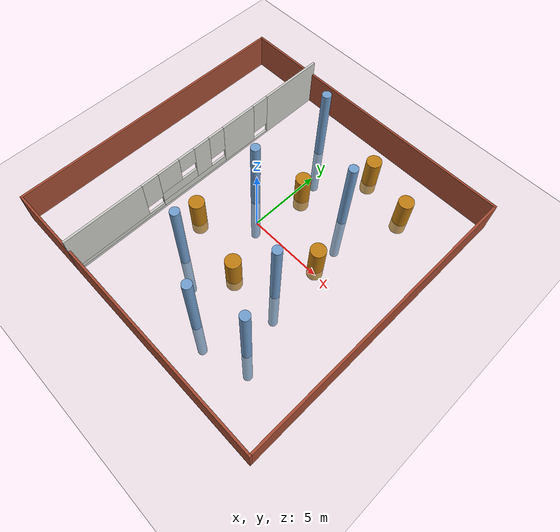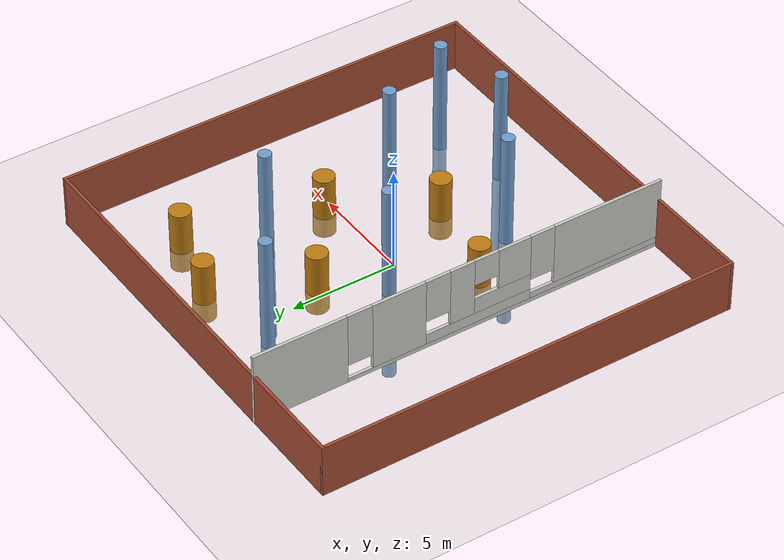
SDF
<sdf version="1.6">
 <world name="ego_swarm_4">
  <plugin name="gz::sim::systems::Physics" filename="gz-sim-physics-system"/>
  <plugin name="gz::sim::systems::UserCommands" filename="gz-sim-user-commands-system"/>
  <plugin name="gz::sim::systems::SceneBroadcaster" filename="gz-sim-scene-broadcaster-system"/>
  <plugin name="gz::sim::systems::Contact" filename="gz-sim-contact-system"/>
  <plugin name="gz::sim::systems::Imu" filename="gz-sim-imu-system"/>
  <plugin name="gz::sim::systems::AirPressure" filename="gz-sim-air-pressure-system"/>
  <plugin name="gz::sim::systems::ApplyLinkWrench" filename="gz-sim-apply-link-wrench-system"/>
  <plugin name="gz::sim::systems::NavSat" filename="gz-sim-navsat-system"/>
  <plugin name="gz::sim::systems::Sensors" filename="gz-sim-sensors-system">
   <render_engine>ogre2</render_engine>
  </plugin>
  <light name="sun" type="directional">
   <pose>0 0 10 0 -0 0</pose>
   <diffuse>0.8 0.8 0.8 1</diffuse>
   <specular>0.2 0.2 0.2 1</specular>
   <attenuation>
    <range>1000</range>
    <constant>0.9</constant>
    <linear>0.01</linear>
    <quadratic>0.001</quadratic>
   </attenuation>
   <direction>-0.5 0.1 -0.9</direction>
  </light>
  <model name="ground_plane">
   <static>1</static>
   <link name="link">
    <collision name="collision">
     <geometry><plane><normal>0 0 1</normal><size>100 100</size></plane></geometry>
     <surface><friction><ode><mu>100</mu><mu2>50</mu2></ode></friction></surface>
    </collision>
    <visual name="visual">
     <cast_shadows>0</cast_shadows>
     <geometry><plane><normal>0 0 1</normal><size>100 100</size></plane></geometry>
     <material>
      <script><uri>file://media/materials/scripts/gazebo.material</uri><name>Gazebo/Grey</name></script>
     </material>
    </visual>
   </link>
  </model>
  <gravity>0 0 -9.8</gravity>
  <magnetic_field>6e-06 2.3e-05 -4.2e-05</magnetic_field>
  <atmosphere type="adiabatic"/>
  <physics name="default_physics" default="0" type="ode">
   <max_step_size>0.004</max_step_size>
   <real_time_factor>1</real_time_factor>
   <real_time_update_rate>250</real_time_update_rate>
  </physics>
  <scene><ambient>0.4 0.4 0.4 1</ambient><background>0.7 0.7 0.7 1</background><shadows>1</shadows></scene>
  <spherical_coordinates>
   <surface_model>EARTH_WGS84</surface_model>
   <latitude_deg>0</latitude_deg>
   <longitude_deg>0</longitude_deg>
   <elevation>0</elevation>
   <heading_deg>0</heading_deg>
  </spherical_coordinates>
  <model name="22">
   <pose>-5 0 0 0 -0 0</pose>
   <link name="Wall_0">
    <pose>0 0 0 0 -0 -1.5708</pose>
    <visual name="Wall_0_Visual_0">
     <pose>-7.8375 0 1.75 0 -0 0</pose>
     <geometry><box><size>4.475 0.15 3.5</size></box></geometry>
     <material>
      <script><uri>file://media/materials/scripts/gazebo.material</uri><name>Gazebo/CeilingTiled</name></script>
      <ambient>0.760784 0.662745 0.627451 1</ambient>
     </material>
     <meta><layer>0</layer></meta>
    </visual>
    <collision name="Wall_0_Collision_0">
     <geometry><box><size>4.475 0.15 3.5</size></box></geometry>
     <pose>-7.8375 0 1.75 0 -0 0</pose>
    </collision>
    <visual name="Wall_0_Visual_1">
     <pose>2.2375 0 0.1 0 -0 0</pose>
     <geometry><box><size>15.675 0.15 0.2</size></box></geometry>
     <material>
      <script><uri>file://media/materials/scripts/gazebo.material</uri><name>Gazebo/CeilingTiled</name></script>
      <ambient>0.760784 0.662745 0.627451 1</ambient>
     </material>
     <meta><layer>0</layer></meta>
    </visual>
    <collision name="Wall_0_Collision_1">
     <geometry><box><size>15.675 0.15 0.2</size></box></geometry>
     <pose>2.2375 0 0.1 0 -0 0</pose>
    </collision>
    <visual name="Wall_0_Visual_2">
     <pose>-3.1 0 1.85 0 -0 0</pose>
     <geometry><box><size>2.6 0.15 3.3</size></box></geometry>
     <material>
      <script><uri>file://media/materials/scripts/gazebo.material</uri><name>Gazebo/CeilingTiled</name></script>
      <ambient>0.760784 0.662745 0.627451 1</ambient>
     </material>
     <meta><layer>0</layer></meta>
    </visual>
    <collision name="Wall_0_Collision_2">
     <geometry><box><size>2.6 0.15 3.3</size></box></geometry>
     <pose>-3.1 0 1.85 0 -0 0</pose>
    </collision>
    <visual name="Wall_0_Visual_3">
     <pose>0.8 0 0.45 0 -0 0</pose>
     <geometry><box><size>5.2 0.15 0.5</size></box></geometry>
     <material>
      <script><uri>file://media/materials/scripts/gazebo.material</uri><name>Gazebo/CeilingTiled</name></script>
      <ambient>0.760784 0.662745 0.627451 1</ambient>
     </material>
     <meta><layer>0</layer></meta>
    </visual>
    <collision name="Wall_0_Collision_3">
     <geometry><box><size>5.2 0.15 0.5</size></box></geometry>
     <pose>0.8 0 0.45 0 -0 0</pose>
    </collision>
    <visual name="Wall_0_Visual_4">
     <pose>6.7375 0 0.35 0 -0 0</pose>
     <geometry><box><size>6.675 0.15 0.3</size></box></geometry>
     <material>
      <script><uri>file://media/materials/scripts/gazebo.material</uri><name>Gazebo/CeilingTiled</name></script>
      <ambient>0.760784 0.662745 0.627451 1</ambient>
     </material>
     <meta><layer>0</layer></meta>
    </visual>
    <collision name="Wall_0_Collision_4">
     <geometry><box><size>6.675 0.15 0.3</size></box></geometry>
     <pose>6.7375 0 0.35 0 -0 0</pose>
    </collision>
    <visual name="Wall_0_Visual_5">
     <pose>7.3375 0 2 0 -0 0</pose>
     <geometry><box><size>5.475 0.15 3</size></box></geometry>
     <material>
      <script><uri>file://media/materials/scripts/gazebo.material</uri><name>Gazebo/CeilingTiled</name></script>
      <ambient>0.760784 0.662745 0.627451 1</ambient>
     </material>
     <meta><layer>0</layer></meta>
    </visual>
    <collision name="Wall_0_Collision_5">
     <geometry><box><size>5.475 0.15 3</size></box></geometry>
     <pose>7.3375 0 2 0 -0 0</pose>
    </collision>
    <visual name="Wall_0_Visual_6">
     <pose>0 0 2.1 0 -0 0</pose>
     <geometry><box><size>1.2 0.15 2.8</size></box></geometry>
     <material>
      <script><uri>file://media/materials/scripts/gazebo.material</uri><name>Gazebo/CeilingTiled</name></script>
      <ambient>0.760784 0.662745 0.627451 1</ambient>
     </material>
     <meta><layer>0</layer></meta>
    </visual>
    <collision name="Wall_0_Collision_6">
     <geometry><box><size>1.2 0.15 2.8</size></box></geometry>
     <pose>0 0 2.1 0 -0 0</pose>
    </collision>
    <visual name="Wall_0_Visual_7">
     <pose>2 0 1.1 0 -0 0</pose>
     <geometry><box><size>2.8 0.15 0.8</size></box></geometry>
     <material>
      <script><uri>file://media/materials/scripts/gazebo.material</uri><name>Gazebo/CeilingTiled</name></script>
      <ambient>0.760784 0.662745 0.627451 1</ambient>
     </material>
     <meta><layer>0</layer></meta>
    </visual>
    <collision name="Wall_0_Collision_7">
     <geometry><box><size>2.8 0.15 0.8</size></box></geometry>
     <pose>2 0 1.1 0 -0 0</pose>
    </collision>
    <visual name="Wall_0_Visual_8">
     <pose>-5 0 2.2 0 -0 0</pose>
     <geometry><box><size>1.2 0.15 2.6</size></box></geometry>
     <material>
      <script><uri>file://media/materials/scripts/gazebo.material</uri><name>Gazebo/CeilingTiled</name></script>
      <ambient>0.760784 0.662745 0.627451 1</ambient>
     </material>
     <meta><layer>0</layer></meta>
    </visual>
    <collision name="Wall_0_Collision_8">
     <geometry><box><size>1.2 0.15 2.6</size></box></geometry>
     <pose>-5 0 2.2 0 -0 0</pose>
    </collision>
    <visual name="Wall_0_Visual_9">
     <pose>4 0 2.35 0 -0 0</pose>
     <geometry><box><size>1.2 0.15 2.3</size></box></geometry>
     <material>
      <script><uri>file://media/materials/scripts/gazebo.material</uri><name>Gazebo/CeilingTiled</name></script>
      <ambient>0.760784 0.662745 0.627451 1</ambient>
     </material>
     <meta><layer>0</layer></meta>
    </visual>
    <collision name="Wall_0_Collision_9">
     <geometry><box><size>1.2 0.15 2.3</size></box></geometry>
     <pose>4 0 2.35 0 -0 0</pose>
    </collision>
    <visual name="Wall_0_Visual_10">
     <pose>-1.2 0 2.45 0 -0 0</pose>
     <geometry><box><size>1.2 0.15 2.1</size></box></geometry>
     <material>
      <script><uri>file://media/materials/scripts/gazebo.material</uri><name>Gazebo/CeilingTiled</name></script>
      <ambient>0.760784 0.662745 0.627451 1</ambient>
     </material>
     <meta><layer>0</layer></meta>
    </visual>
    <collision name="Wall_0_Collision_10">
     <geometry><box><size>1.2 0.15 2.1</size></box></geometry>
     <pose>-1.2 0 2.45 0 -0 0</pose>
    </collision>
    <visual name="Wall_0_Visual_11">
     <pose>2.6 0 2.5 0 -0 0</pose>
     <geometry><box><size>1.6 0.15 2</size></box></geometry>
     <material>
      <script><uri>file://media/materials/scripts/gazebo.material</uri><name>Gazebo/CeilingTiled</name></script>
      <ambient>0.760784 0.662745 0.627451 1</ambient>
     </material>
     <meta><layer>0</layer></meta>
    </visual>
    <collision name="Wall_0_Collision_11">
     <geometry><box><size>1.6 0.15 2</size></box></geometry>
     <pose>2.6 0 2.5 0 -0 0</pose>
    </collision>
    <visual name="Wall_0_Visual_12">
     <pose>1.2 0 2.85 0 -0 0</pose>
     <geometry><box><size>1.2 0.15 1.3</size></box></geometry>
     <material>
      <script><uri>file://media/materials/scripts/gazebo.material</uri><name>Gazebo/CeilingTiled</name></script>
      <ambient>0.760784 0.662745 0.627451 1</ambient>
     </material>
     <meta><layer>0</layer></meta>
    </visual>
    <collision name="Wall_0_Collision_12">
     <geometry><box><size>1.2 0.15 1.3</size></box></geometry>
     <pose>1.2 0 2.85 0 -0 0</pose>
    </collision>
   </link>
   <static>1</static>
  </model>
  <model name="blank">
   <link name="Wall_0">
    <collision name="Wall_0_Collision">
     <geometry><box><size>20.15 0.15 2.5</size></box></geometry>
     <pose>0 0 1.25 0 -0 0</pose>
    </collision>
    <visual name="Wall_0_Visual">
     <pose>0 0 1.25 0 -0 0</pose>
     <geometry><box><size>20.15 0.15 2.5</size></box></geometry>
     <material>
      <script><uri>file://media/materials/scripts/gazebo.material</uri><name>Gazebo/Bricks</name></script>
      <ambient>1 1 1 1</ambient>
     </material>
     <meta><layer>0</layer></meta>
    </visual>
    <pose>0 10 0 0 -0 0</pose>
   </link>
   <link name="Wall_1">
    <collision name="Wall_1_Collision">
     <geometry><box><size>20.15 0.15 2.5</size></box></geometry>
     <pose>0 0 1.25 0 -0 0</pose>
    </collision>
    <visual name="Wall_1_Visual">
     <pose>0 0 1.25 0 -0 0</pose>
     <geometry><box><size>20.15 0.15 2.5</size></box></geometry>
     <material>
      <script><uri>file://media/materials/scripts/gazebo.material</uri><name>Gazebo/Bricks</name></script>
      <ambient>1 1 1 1</ambient>
     </material>
     <meta><layer>0</layer></meta>
    </visual>
    <pose>10 0 0 0 -0 -1.5708</pose>
   </link>
   <link name="Wall_2">
    <collision name="Wall_2_Collision">
     <geometry><box><size>20.15 0.15 2.5</size></box></geometry>
     <pose>0 0 1.25 0 -0 0</pose>
    </collision>
    <visual name="Wall_2_Visual">
     <pose>0 0 1.25 0 -0 0</pose>
     <geometry><box><size>20.15 0.15 2.5</size></box></geometry>
     <material>
      <script><uri>file://media/materials/scripts/gazebo.material</uri><name>Gazebo/Bricks</name></script>
      <ambient>1 1 1 1</ambient>
     </material>
     <meta><layer>0</layer></meta>
    </visual>
    <pose>0 -10 0 0 -0 3.14159</pose>
   </link>
   <link name="Wall_3">
    <collision name="Wall_3_Collision">
     <geometry><box><size>20.15 0.15 2.5</size></box></geometry>
     <pose>0 0 1.25 0 -0 0</pose>
    </collision>
    <visual name="Wall_3_Visual">
     <pose>0 0 1.25 0 -0 0</pose>
     <geometry><box><size>20.15 0.15 2.5</size></box></geometry>
     <material>
      <script><uri>file://media/materials/scripts/gazebo.material</uri><name>Gazebo/Bricks</name></script>
      <ambient>1 1 1 1</ambient>
     </material>
     <meta><layer>0</layer></meta>
    </visual>
    <pose>-10 0 0 0 -0 1.5708</pose>
   </link>
   <static>1</static>
  </model>
  <model name="unit_cylinder">
   <link name="link">
    <inertial>
     <mass>1</mass>
     <inertia><ixx>0.145833</ixx><ixy>0</ixy><ixz>0</ixz><iyy>0.145833</iyy><iyz>0</iyz><izz>0.125</izz></inertia>
    </inertial>
    <visual name="visual">
     <geometry><cylinder><radius>0.5</radius><length>3</length></cylinder></geometry>
     <material>
      <script><name>Gazebo/Grey</name><uri>file://media/materials/scripts/gazebo.material</uri></script>
      <shader type="pixel"><normal_map>__default__</normal_map></shader>
      <ambient>0.757 0.49 0.067 1</ambient>
      <diffuse>0.7 0.7 0.7 1</diffuse>
      <specular>0.01 0.01 0.01 1</specular>
      <emissive>0 0 0 1</emissive>
     </material>
    </visual>
    <collision name="collision">
     <geometry><cylinder><radius>0.5</radius><length>1</length></cylinder></geometry>
     <surface>
      <friction>
       <ode><mu>1</mu><mu2>1</mu2><fdir1>0 0 0</fdir1><slip1>0</slip1><slip2>0</slip2></ode>
       <torsional>
        <coefficient>1</coefficient>
        <patch_radius>0</patch_radius>
        <surface_radius>0</surface_radius>
        <use_patch_radius>1</use_patch_radius>
        <ode><slip>0</slip></ode>
       </torsional>
      </friction>
      <bounce><restitution_coefficient>0</restitution_coefficient><threshold>1e+06</threshold></bounce>
      <contact>
       <collide_without_contact>0</collide_without_contact>
       <collide_without_contact_bitmask>1</collide_without_contact_bitmask>
       <collide_bitmask>1</collide_bitmask>
       <ode>
        <soft_cfm>0</soft_cfm>
        <soft_erp>0.2</soft_erp>
        <kp>1e+13</kp>
        <kd>1</kd>
        <max_vel>0.01</max_vel>
        <min_depth>0</min_depth>
       </ode>
       <bullet>
        <split_impulse>1</split_impulse>
        <split_impulse_penetration_threshold>-0.01</split_impulse_penetration_threshold>
        <soft_cfm>0</soft_cfm>
        <soft_erp>0.2</soft_erp>
        <kp>1e+13</kp>
        <kd>1</kd>
       </bullet>
      </contact>
     </surface>
    </collision>
   </link>
   <static>0</static>
   <pose>6.03209 6.76866 0.5 0 -0 0</pose>
  </model>
  <model name="unit_cylinder_0">
   <link name="link">
    <inertial>
     <mass>1</mass>
     <inertia><ixx>0.145833</ixx><ixy>0</ixy><ixz>0</ixz><iyy>0.145833</iyy><iyz>0</iyz><izz>0.125</izz></inertia>
    </inertial>
    <visual name="visual">
     <geometry><cylinder><radius>0.5</radius><length>3</length></cylinder></geometry>
     <material>
      <script><name>Gazebo/Grey</name><uri>file://media/materials/scripts/gazebo.material</uri></script>
      <shader type="pixel"><normal_map>__default__</normal_map></shader>
      <ambient>0.757 0.49 0.067 1</ambient>
      <diffuse>0.7 0.7 0.7 1</diffuse>
      <specular>0.01 0.01 0.01 1</specular>
      <emissive>0 0 0 1</emissive>
     </material>
    </visual>
    <collision name="collision">
     <geometry><cylinder><radius>0.5</radius><length>1</length></cylinder></geometry>
     <surface>
      <friction>
       <ode><mu>1</mu><mu2>1</mu2><fdir1>0 0 0</fdir1><slip1>0</slip1><slip2>0</slip2></ode>
       <torsional>
        <coefficient>1</coefficient>
        <patch_radius>0</patch_radius>
        <surface_radius>0</surface_radius>
        <use_patch_radius>1</use_patch_radius>
        <ode><slip>0</slip></ode>
       </torsional>
      </friction>
      <bounce><restitution_coefficient>0</restitution_coefficient><threshold>1e+06</threshold></bounce>
      <contact>
       <collide_without_contact>0</collide_without_contact>
       <collide_without_contact_bitmask>1</collide_without_contact_bitmask>
       <collide_bitmask>1</collide_bitmask>
       <ode>
        <soft_cfm>0</soft_cfm>
        <soft_erp>0.2</soft_erp>
        <kp>1e+13</kp>
        <kd>1</kd>
        <max_vel>0.01</max_vel>
        <min_depth>0</min_depth>
       </ode>
       <bullet>
        <split_impulse>1</split_impulse>
        <split_impulse_penetration_threshold>-0.01</split_impulse_penetration_threshold>
        <soft_cfm>0</soft_cfm>
        <soft_erp>0.2</soft_erp>
        <kp>1e+13</kp>
        <kd>1</kd>
       </bullet>
      </contact>
     </surface>
    </collision>
   </link>
   <static>0</static>
   <pose>0.526784 3.48874 0.499991 0 -0 0</pose>
  </model>
  <model name="unit_cylinder_1">
   <link name="link">
    <inertial>
     <mass>1</mass>
     <inertia><ixx>0.145833</ixx><ixy>0</ixy><ixz>0</ixz><iyy>0.145833</iyy><iyz>0</iyz><izz>0.125</izz></inertia>
    </inertial>
    <visual name="visual">
     <geometry><cylinder><radius>0.5</radius><length>3</length></cylinder></geometry>
     <material>
      <script><name>Gazebo/Grey</name><uri>file://media/materials/scripts/gazebo.material</uri></script>
      <shader type="pixel"><normal_map>__default__</normal_map></shader>
      <ambient>0.757 0.49 0.067 1</ambient>
      <diffuse>0.7 0.7 0.7 1</diffuse>
      <specular>0.01 0.01 0.01 1</specular>
      <emissive>0 0 0 1</emissive>
     </material>
    </visual>
    <collision name="collision">
     <geometry><cylinder><radius>0.5</radius><length>1</length></cylinder></geometry>
     <surface>
      <friction>
       <ode><mu>1</mu><mu2>1</mu2><fdir1>0 0 0</fdir1><slip1>0</slip1><slip2>0</slip2></ode>
       <torsional>
        <coefficient>1</coefficient>
        <patch_radius>0</patch_radius>
        <surface_radius>0</surface_radius>
        <use_patch_radius>1</use_patch_radius>
        <ode><slip>0</slip></ode>
       </torsional>
      </friction>
      <bounce><restitution_coefficient>0</restitution_coefficient><threshold>1e+06</threshold></bounce>
      <contact>
       <collide_without_contact>0</collide_without_contact>
       <collide_without_contact_bitmask>1</collide_without_contact_bitmask>
       <collide_bitmask>1</collide_bitmask>
       <ode>
        <soft_cfm>0</soft_cfm>
        <soft_erp>0.2</soft_erp>
        <kp>1e+13</kp>
        <kd>1</kd>
        <max_vel>0.01</max_vel>
        <min_depth>0</min_depth>
       </ode>
       <bullet>
        <split_impulse>1</split_impulse>
        <split_impulse_penetration_threshold>-0.01</split_impulse_penetration_threshold>
        <soft_cfm>0</soft_cfm>
        <soft_erp>0.2</soft_erp>
        <kp>1e+13</kp>
        <kd>1</kd>
       </bullet>
      </contact>
     </surface>
    </collision>
   </link>
   <static>0</static>
   <pose>2.69656 7.6939 0.5 0 -0 0</pose>
  </model>
  <model name="unit_cylinder_0_0">
   <link name="link">
    <inertial>
     <mass>1</mass>
     <inertia><ixx>0.145833</ixx><ixy>0</ixy><ixz>0</ixz><iyy>0.145833</iyy><iyz>0</iyz><izz>0.125</izz></inertia>
    </inertial>
    <pose>0 0 3 0 -0 0</pose>
    <visual name="visual">
     <geometry><cylinder><radius>0.3</radius><length>10</length></cylinder></geometry>
     <material>
      <script><name>Gazebo/Grey</name><uri>file://media/materials/scripts/gazebo.material</uri></script>
      <shader type="pixel"><normal_map>__default__</normal_map></shader>
      <ambient>0.447 0.624 0.812 1</ambient>
      <diffuse>0.7 0.7 0.7 1</diffuse>
      <specular>0.01 0.01 0.01 1</specular>
      <emissive>0 0 0 1</emissive>
     </material>
    </visual>
    <collision name="collision">
     <geometry><cylinder><radius>0.5</radius><length>1</length></cylinder></geometry>
     <surface>
      <friction>
       <ode><mu>1</mu><mu2>1</mu2><fdir1>0 0 0</fdir1><slip1>0</slip1><slip2>0</slip2></ode>
       <torsional>
        <coefficient>1</coefficient>
        <patch_radius>0</patch_radius>
        <surface_radius>0</surface_radius>
        <use_patch_radius>1</use_patch_radius>
        <ode><slip>0</slip></ode>
       </torsional>
      </friction>
      <bounce><restitution_coefficient>0</restitution_coefficient><threshold>1e+06</threshold></bounce>
      <contact>
       <collide_without_contact>0</collide_without_contact>
       <collide_without_contact_bitmask>1</collide_without_contact_bitmask>
       <collide_bitmask>1</collide_bitmask>
       <ode>
        <soft_cfm>0</soft_cfm>
        <soft_erp>0.2</soft_erp>
        <kp>1e+13</kp>
        <kd>1</kd>
        <max_vel>0.01</max_vel>
        <min_depth>0</min_depth>
       </ode>
       <bullet>
        <split_impulse>1</split_impulse>
        <split_impulse_penetration_threshold>-0.01</split_impulse_penetration_threshold>
        <soft_cfm>0</soft_cfm>
        <soft_erp>0.2</soft_erp>
        <kp>1e+13</kp>
        <kd>1</kd>
       </bullet>
      </contact>
     </surface>
    </collision>
   </link>
   <static>0</static>
   <pose>3.51742 4.05931 -2.50001 -0 -0 -0</pose>
  </model>
  <model name="unit_cylinder_0_1">
   <link name="link">
    <inertial>
     <mass>1</mass>
     <inertia><ixx>0.145833</ixx><ixy>0</ixy><ixz>0</ixz><iyy>0.145833</iyy><iyz>0</iyz><izz>0.125</izz></inertia>
    </inertial>
    <pose>0 0 3 0 -0 0</pose>
    <visual name="visual">
     <geometry><cylinder><radius>0.3</radius><length>10</length></cylinder></geometry>
     <material>
      <script><name>Gazebo/Grey</name><uri>file://media/materials/scripts/gazebo.material</uri></script>
      <shader type="pixel"><normal_map>__default__</normal_map></shader>
      <ambient>0.447 0.624 0.812 1</ambient>
      <diffuse>0.7 0.7 0.7 1</diffuse>
      <specular>0.01 0.01 0.01 1</specular>
      <emissive>0 0 0 1</emissive>
     </material>
    </visual>
    <collision name="collision">
     <geometry><cylinder><radius>0.5</radius><length>1</length></cylinder></geometry>
     <surface>
      <friction>
       <ode><mu>1</mu><mu2>1</mu2><fdir1>0 0 0</fdir1><slip1>0</slip1><slip2>0</slip2></ode>
       <torsional>
        <coefficient>1</coefficient>
        <patch_radius>0</patch_radius>
        <surface_radius>0</surface_radius>
        <use_patch_radius>1</use_patch_radius>
        <ode><slip>0</slip></ode>
       </torsional>
      </friction>
      <bounce><restitution_coefficient>0</restitution_coefficient><threshold>1e+06</threshold></bounce>
      <contact>
       <collide_without_contact>0</collide_without_contact>
       <collide_without_contact_bitmask>1</collide_without_contact_bitmask>
       <collide_bitmask>1</collide_bitmask>
       <ode>
        <soft_cfm>0</soft_cfm>
        <soft_erp>0.2</soft_erp>
        <kp>1e+13</kp>
        <kd>1</kd>
        <max_vel>0.01</max_vel>
        <min_depth>0</min_depth>
       </ode>
       <bullet>
        <split_impulse>1</split_impulse>
        <split_impulse_penetration_threshold>-0.01</split_impulse_penetration_threshold>
        <soft_cfm>0</soft_cfm>
        <soft_erp>0.2</soft_erp>
        <kp>1e+13</kp>
        <kd>1</kd>
       </bullet>
      </contact>
     </surface>
    </collision>
   </link>
   <static>0</static>
   <pose>2.4991 -7.17041 -2.5 0 -0 0</pose>
  </model>
  <model name="unit_cylinder_0_2">
   <link name="link">
    <inertial>
     <mass>1</mass>
     <inertia><ixx>0.145833</ixx><ixy>0</ixy><ixz>0</ixz><iyy>0.145833</iyy><iyz>0</iyz><izz>0.125</izz></inertia>
    </inertial>
    <pose>0 0 3 0 -0 0</pose>
    <visual name="visual">
     <geometry><cylinder><radius>0.3</radius><length>10</length></cylinder></geometry>
     <material>
      <script><name>Gazebo/Grey</name><uri>file://media/materials/scripts/gazebo.material</uri></script>
      <shader type="pixel"><normal_map>__default__</normal_map></shader>
      <ambient>0.447 0.624 0.812 1</ambient>
      <diffuse>0.7 0.7 0.7 1</diffuse>
      <specular>0.01 0.01 0.01 1</specular>
      <emissive>0 0 0 1</emissive>
     </material>
    </visual>
    <collision name="collision">
     <geometry><cylinder><radius>0.5</radius><length>1</length></cylinder></geometry>
     <surface>
      <friction>
       <ode><mu>1</mu><mu2>1</mu2><fdir1>0 0 0</fdir1><slip1>0</slip1><slip2>0</slip2></ode>
       <torsional>
        <coefficient>1</coefficient>
        <patch_radius>0</patch_radius>
        <surface_radius>0</surface_radius>
        <use_patch_radius>1</use_patch_radius>
        <ode><slip>0</slip></ode>
       </torsional>
      </friction>
      <bounce><restitution_coefficient>0</restitution_coefficient><threshold>1e+06</threshold></bounce>
      <contact>
       <collide_without_contact>0</collide_without_contact>
       <collide_without_contact_bitmask>1</collide_without_contact_bitmask>
       <collide_bitmask>1</collide_bitmask>
       <ode>
        <soft_cfm>0</soft_cfm>
        <soft_erp>0.2</soft_erp>
        <kp>1e+13</kp>
        <kd>1</kd>
        <max_vel>0.01</max_vel>
        <min_depth>0</min_depth>
       </ode>
       <bullet>
        <split_impulse>1</split_impulse>
        <split_impulse_penetration_threshold>-0.01</split_impulse_penetration_threshold>
        <soft_cfm>0</soft_cfm>
        <soft_erp>0.2</soft_erp>
        <kp>1e+13</kp>
        <kd>1</kd>
       </bullet>
      </contact>
     </surface>
    </collision>
   </link>
   <static>0</static>
   <pose>5.67976 -6.20918 -2.50001 -0 -0 -0</pose>
  </model>
  <model name="unit_cylinder_0_3">
   <link name="link">
    <inertial>
     <mass>1</mass>
     <inertia><ixx>0.145833</ixx><ixy>0</ixy><ixz>0</ixz><iyy>0.145833</iyy><iyz>0</iyz><izz>0.125</izz></inertia>
    </inertial>
    <pose>0 0 3 0 -0 0</pose>
    <visual name="visual">
     <geometry><cylinder><radius>0.3</radius><length>10</length></cylinder></geometry>
     <material>
      <script><name>Gazebo/Grey</name><uri>file://media/materials/scripts/gazebo.material</uri></script>
      <shader type="pixel"><normal_map>__default__</normal_map></shader>
      <ambient>0.447 0.624 0.812 1</ambient>
      <diffuse>0.7 0.7 0.7 1</diffuse>
      <specular>0.01 0.01 0.01 1</specular>
      <emissive>0 0 0 1</emissive>
     </material>
    </visual>
    <collision name="collision">
     <geometry><cylinder><radius>0.5</radius><length>1</length></cylinder></geometry>
     <surface>
      <friction>
       <ode><mu>1</mu><mu2>1</mu2><fdir1>0 0 0</fdir1><slip1>0</slip1><slip2>0</slip2></ode>
       <torsional>
        <coefficient>1</coefficient>
        <patch_radius>0</patch_radius>
        <surface_radius>0</surface_radius>
        <use_patch_radius>1</use_patch_radius>
        <ode><slip>0</slip></ode>
       </torsional>
      </friction>
      <bounce><restitution_coefficient>0</restitution_coefficient><threshold>1e+06</threshold></bounce>
      <contact>
       <collide_without_contact>0</collide_without_contact>
       <collide_without_contact_bitmask>1</collide_without_contact_bitmask>
       <collide_bitmask>1</collide_bitmask>
       <ode>
        <soft_cfm>0</soft_cfm>
        <soft_erp>0.2</soft_erp>
        <kp>1e+13</kp>
        <kd>1</kd>
        <max_vel>0.01</max_vel>
        <min_depth>0</min_depth>
       </ode>
       <bullet>
        <split_impulse>1</split_impulse>
        <split_impulse_penetration_threshold>-0.01</split_impulse_penetration_threshold>
        <soft_cfm>0</soft_cfm>
        <soft_erp>0.2</soft_erp>
        <kp>1e+13</kp>
        <kd>1</kd>
       </bullet>
      </contact>
     </surface>
    </collision>
   </link>
   <static>0</static>
   <pose>4.22335 -2.59857 -2.5 0 -0 0</pose>
  </model>
  <model name="unit_cylinder_0_4">
   <link name="link">
    <inertial>
     <mass>1</mass>
     <inertia><ixx>0.145833</ixx><ixy>0</ixy><ixz>0</ixz><iyy>0.145833</iyy><iyz>0</iyz><izz>0.125</izz></inertia>
    </inertial>
    <pose>0 0 3 0 -0 0</pose>
    <visual name="visual">
     <geometry><cylinder><radius>0.3</radius><length>10</length></cylinder></geometry>
     <material>
      <script><name>Gazebo/Grey</name><uri>file://media/materials/scripts/gazebo.material</uri></script>
      <shader type="pixel"><normal_map>__default__</normal_map></shader>
      <ambient>0.447 0.624 0.812 1</ambient>
      <diffuse>0.7 0.7 0.7 1</diffuse>
      <specular>0.01 0.01 0.01 1</specular>
      <emissive>0 0 0 1</emissive>
     </material>
    </visual>
    <collision name="collision">
     <geometry><cylinder><radius>0.5</radius><length>1</length></cylinder></geometry>
     <surface>
      <friction>
       <ode><mu>1</mu><mu2>1</mu2><fdir1>0 0 0</fdir1><slip1>0</slip1><slip2>0</slip2></ode>
       <torsional>
        <coefficient>1</coefficient>
        <patch_radius>0</patch_radius>
        <surface_radius>0</surface_radius>
        <use_patch_radius>1</use_patch_radius>
        <ode><slip>0</slip></ode>
       </torsional>
      </friction>
      <bounce><restitution_coefficient>0</restitution_coefficient><threshold>1e+06</threshold></bounce>
      <contact>
       <collide_without_contact>0</collide_without_contact>
       <collide_without_contact_bitmask>1</collide_without_contact_bitmask>
       <collide_bitmask>1</collide_bitmask>
       <ode>
        <soft_cfm>0</soft_cfm>
        <soft_erp>0.2</soft_erp>
        <kp>1e+13</kp>
        <kd>1</kd>
        <max_vel>0.01</max_vel>
        <min_depth>0</min_depth>
       </ode>
       <bullet>
        <split_impulse>1</split_impulse>
        <split_impulse_penetration_threshold>-0.01</split_impulse_penetration_threshold>
        <soft_cfm>0</soft_cfm>
        <soft_erp>0.2</soft_erp>
        <kp>1e+13</kp>
        <kd>1</kd>
       </bullet>
      </contact>
     </surface>
    </collision>
   </link>
   <static>0</static>
   <pose>-1.26845 7.03922 -2.5 0 -0 0</pose>
  </model>
  <model name="unit_cylinder_0_5">
   <link name="link">
    <inertial>
     <mass>1</mass>
     <inertia><ixx>0.145833</ixx><ixy>0</ixy><ixz>0</ixz><iyy>0.145833</iyy><iyz>0</iyz><izz>0.125</izz></inertia>
    </inertial>
    <pose>0 0 3 0 -0 0</pose>
    <visual name="visual">
     <geometry><cylinder><radius>0.3</radius><length>10</length></cylinder></geometry>
     <material>
      <script><name>Gazebo/Grey</name><uri>file://media/materials/scripts/gazebo.material</uri></script>
      <shader type="pixel"><normal_map>__default__</normal_map></shader>
      <ambient>0.447 0.624 0.812 1</ambient>
      <diffuse>0.7 0.7 0.7 1</diffuse>
      <specular>0.01 0.01 0.01 1</specular>
      <emissive>0 0 0 1</emissive>
     </material>
    </visual>
    <collision name="collision">
     <geometry><cylinder><radius>0.5</radius><length>1</length></cylinder></geometry>
     <surface>
      <friction>
       <ode><mu>1</mu><mu2>1</mu2><fdir1>0 0 0</fdir1><slip1>0</slip1><slip2>0</slip2></ode>
       <torsional>
        <coefficient>1</coefficient>
        <patch_radius>0</patch_radius>
        <surface_radius>0</surface_radius>
        <use_patch_radius>1</use_patch_radius>
        <ode><slip>0</slip></ode>
       </torsional>
      </friction>
      <bounce><restitution_coefficient>0</restitution_coefficient><threshold>1e+06</threshold></bounce>
      <contact>
       <collide_without_contact>0</collide_without_contact>
       <collide_without_contact_bitmask>1</collide_without_contact_bitmask>
       <collide_bitmask>1</collide_bitmask>
       <ode>
        <soft_cfm>0</soft_cfm>
        <soft_erp>0.2</soft_erp>
        <kp>1e+13</kp>
        <kd>1</kd>
        <max_vel>0.01</max_vel>
        <min_depth>0</min_depth>
       </ode>
       <bullet>
        <split_impulse>1</split_impulse>
        <split_impulse_penetration_threshold>-0.01</split_impulse_penetration_threshold>
        <soft_cfm>0</soft_cfm>
        <soft_erp>0.2</soft_erp>
        <kp>1e+13</kp>
        <kd>1</kd>
       </bullet>
      </contact>
     </surface>
    </collision>
   </link>
   <static>0</static>
   <pose>-1.33269 1.12821 -2.5 0 -0 0</pose>
  </model>
  <model name="unit_cylinder_0_6">
   <link name="link">
    <inertial>
     <mass>1</mass>
     <inertia><ixx>0.145833</ixx><ixy>0</ixy><ixz>0</ixz><iyy>0.145833</iyy><iyz>0</iyz><izz>0.125</izz></inertia>
    </inertial>
    <pose>0 0 3 0 -0 0</pose>
    <visual name="visual">
     <geometry><cylinder><radius>0.3</radius><length>10</length></cylinder></geometry>
     <material>
      <script><name>Gazebo/Grey</name><uri>file://media/materials/scripts/gazebo.material</uri></script>
      <shader type="pixel"><normal_map>__default__</normal_map></shader>
      <ambient>0.447 0.624 0.812 1</ambient>
      <diffuse>0.7 0.7 0.7 1</diffuse>
      <specular>0.01 0.01 0.01 1</specular>
      <emissive>0 0 0 1</emissive>
     </material>
    </visual>
    <collision name="collision">
     <geometry><cylinder><radius>0.5</radius><length>1</length></cylinder></geometry>
     <surface>
      <friction>
       <ode><mu>1</mu><mu2>1</mu2><fdir1>0 0 0</fdir1><slip1>0</slip1><slip2>0</slip2></ode>
       <torsional>
        <coefficient>1</coefficient>
        <patch_radius>0</patch_radius>
        <surface_radius>0</surface_radius>
        <use_patch_radius>1</use_patch_radius>
        <ode><slip>0</slip></ode>
       </torsional>
      </friction>
      <bounce><restitution_coefficient>0</restitution_coefficient><threshold>1e+06</threshold></bounce>
      <contact>
       <collide_without_contact>0</collide_without_contact>
       <collide_without_contact_bitmask>1</collide_without_contact_bitmask>
       <collide_bitmask>1</collide_bitmask>
       <ode>
        <soft_cfm>0</soft_cfm>
        <soft_erp>0.2</soft_erp>
        <kp>1e+13</kp>
        <kd>1</kd>
        <max_vel>0.01</max_vel>
        <min_depth>0</min_depth>
       </ode>
       <bullet>
        <split_impulse>1</split_impulse>
        <split_impulse_penetration_threshold>-0.01</split_impulse_penetration_threshold>
        <soft_cfm>0</soft_cfm>
        <soft_erp>0.2</soft_erp>
        <kp>1e+13</kp>
        <kd>1</kd>
       </bullet>
      </contact>
     </surface>
    </collision>
   </link>
   <static>0</static>
   <pose>-1.18762 -4.92062 -2.50001 -0 -0 -0</pose>
  </model>
  <model name="unit_cylinder_2">
   <link name="link">
    <inertial>
     <mass>1</mass>
     <inertia><ixx>0.145833</ixx><ixy>0</ixy><ixz>0</ixz><iyy>0.145833</iyy><iyz>0</iyz><izz>0.125</izz></inertia>
    </inertial>
    <visual name="visual">
     <geometry><cylinder><radius>0.5</radius><length>3</length></cylinder></geometry>
     <material>
      <script><name>Gazebo/Grey</name><uri>file://media/materials/scripts/gazebo.material</uri></script>
      <shader type="pixel"><normal_map>__default__</normal_map></shader>
      <ambient>0.757 0.49 0.067 1</ambient>
      <diffuse>0.7 0.7 0.7 1</diffuse>
      <specular>0.01 0.01 0.01 1</specular>
      <emissive>0 0 0 1</emissive>
     </material>
    </visual>
    <collision name="collision">
     <geometry><cylinder><radius>0.5</radius><length>1</length></cylinder></geometry>
     <surface>
      <friction>
       <ode><mu>1</mu><mu2>1</mu2><fdir1>0 0 0</fdir1><slip1>0</slip1><slip2>0</slip2></ode>
       <torsional>
        <coefficient>1</coefficient>
        <patch_radius>0</patch_radius>
        <surface_radius>0</surface_radius>
        <use_patch_radius>1</use_patch_radius>
        <ode><slip>0</slip></ode>
       </torsional>
      </friction>
      <bounce><restitution_coefficient>0</restitution_coefficient><threshold>1e+06</threshold></bounce>
      <contact>
       <collide_without_contact>0</collide_without_contact>
       <collide_without_contact_bitmask>1</collide_without_contact_bitmask>
       <collide_bitmask>1</collide_bitmask>
       <ode>
        <soft_cfm>0</soft_cfm>
        <soft_erp>0.2</soft_erp>
        <kp>1e+13</kp>
        <kd>1</kd>
        <max_vel>0.01</max_vel>
        <min_depth>0</min_depth>
       </ode>
       <bullet>
        <split_impulse>1</split_impulse>
        <split_impulse_penetration_threshold>-0.01</split_impulse_penetration_threshold>
        <soft_cfm>0</soft_cfm>
        <soft_erp>0.2</soft_erp>
        <kp>1e+13</kp>
        <kd>1</kd>
       </bullet>
      </contact>
     </surface>
    </collision>
   </link>
   <static>0</static>
   <pose>4.61201 0.491104 0.5 0 -0 0</pose>
  </model>
  <model name="unit_cylinder_3">
   <link name="link">
    <inertial>
     <mass>1</mass>
     <inertia><ixx>0.145833</ixx><ixy>0</ixy><ixz>0</ixz><iyy>0.145833</iyy><iyz>0</iyz><izz>0.125</izz></inertia>
    </inertial>
    <visual name="visual">
     <geometry><cylinder><radius>0.5</radius><length>3</length></cylinder></geometry>
     <material>
      <script><name>Gazebo/Grey</name><uri>file://media/materials/scripts/gazebo.material</uri></script>
      <shader type="pixel"><normal_map>__default__</normal_map></shader>
      <ambient>0.757 0.49 0.067 1</ambient>
      <diffuse>0.7 0.7 0.7 1</diffuse>
      <specular>0.01 0.01 0.01 1</specular>
      <emissive>0 0 0 1</emissive>
     </material>
    </visual>
    <collision name="collision">
     <geometry><cylinder><radius>0.5</radius><length>1</length></cylinder></geometry>
     <surface>
      <friction>
       <ode><mu>1</mu><mu2>1</mu2><fdir1>0 0 0</fdir1><slip1>0</slip1><slip2>0</slip2></ode>
       <torsional>
        <coefficient>1</coefficient>
        <patch_radius>0</patch_radius>
        <surface_radius>0</surface_radius>
        <use_patch_radius>1</use_patch_radius>
        <ode><slip>0</slip></ode>
       </torsional>
      </friction>
      <bounce><restitution_coefficient>0</restitution_coefficient><threshold>1e+06</threshold></bounce>
      <contact>
       <collide_without_contact>0</collide_without_contact>
       <collide_without_contact_bitmask>1</collide_without_contact_bitmask>
       <collide_bitmask>1</collide_bitmask>
       <ode>
        <soft_cfm>0</soft_cfm>
        <soft_erp>0.2</soft_erp>
        <kp>1e+13</kp>
        <kd>1</kd>
        <max_vel>0.01</max_vel>
        <min_depth>0</min_depth>
       </ode>
       <bullet>
        <split_impulse>1</split_impulse>
        <split_impulse_penetration_threshold>-0.01</split_impulse_penetration_threshold>
        <soft_cfm>0</soft_cfm>
        <soft_erp>0.2</soft_erp>
        <kp>1e+13</kp>
        <kd>1</kd>
       </bullet>
      </contact>
     </surface>
    </collision>
   </link>
   <static>0</static>
   <pose>1.72442 -3.55613 0.499991 0 -0 0</pose>
  </model>
  <model name="unit_cylinder_4">
   <link name="link">
    <inertial>
     <mass>1</mass>
     <inertia><ixx>0.145833</ixx><ixy>0</ixy><ixz>0</ixz><iyy>0.145833</iyy><iyz>0</iyz><izz>0.125</izz></inertia>
    </inertial>
    <visual name="visual">
     <geometry><cylinder><radius>0.5</radius><length>3</length></cylinder></geometry>
     <material>
      <script><name>Gazebo/Grey</name><uri>file://media/materials/scripts/gazebo.material</uri></script>
      <shader type="pixel"><normal_map>__default__</normal_map></shader>
      <ambient>0.757 0.49 0.067 1</ambient>
      <diffuse>0.7 0.7 0.7 1</diffuse>
      <specular>0.01 0.01 0.01 1</specular>
      <emissive>0 0 0 1</emissive>
     </material>
    </visual>
    <collision name="collision">
     <geometry><cylinder><radius>0.5</radius><length>1</length></cylinder></geometry>
     <surface>
      <friction>
       <ode><mu>1</mu><mu2>1</mu2><fdir1>0 0 0</fdir1><slip1>0</slip1><slip2>0</slip2></ode>
       <torsional>
        <coefficient>1</coefficient>
        <patch_radius>0</patch_radius>
        <surface_radius>0</surface_radius>
        <use_patch_radius>1</use_patch_radius>
        <ode><slip>0</slip></ode>
       </torsional>
      </friction>
      <bounce><restitution_coefficient>0</restitution_coefficient><threshold>1e+06</threshold></bounce>
      <contact>
       <collide_without_contact>0</collide_without_contact>
       <collide_without_contact_bitmask>1</collide_without_contact_bitmask>
       <collide_bitmask>1</collide_bitmask>
       <ode>
        <soft_cfm>0</soft_cfm>
        <soft_erp>0.2</soft_erp>
        <kp>1e+13</kp>
        <kd>1</kd>
        <max_vel>0.01</max_vel>
        <min_depth>0</min_depth>
       </ode>
       <bullet>
        <split_impulse>1</split_impulse>
        <split_impulse_penetration_threshold>-0.01</split_impulse_penetration_threshold>
        <soft_cfm>0</soft_cfm>
        <soft_erp>0.2</soft_erp>
        <kp>1e+13</kp>
        <kd>1</kd>
       </bullet>
      </contact>
     </surface>
    </collision>
   </link>
   <static>0</static>
   <pose>-2.75559 -2.44735 0.499991 0 -0 0</pose>
  </model>
 </world>
</sdf>
